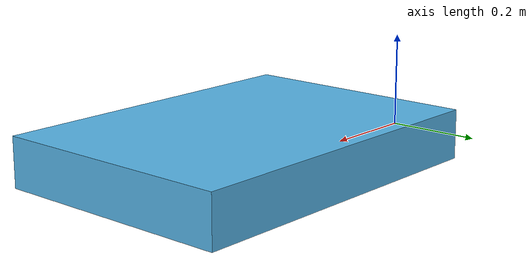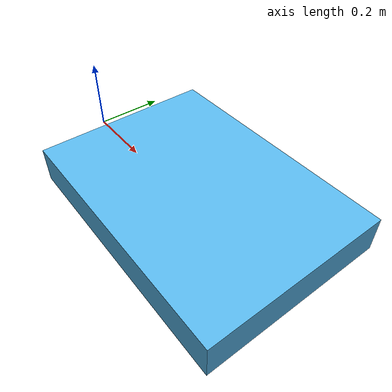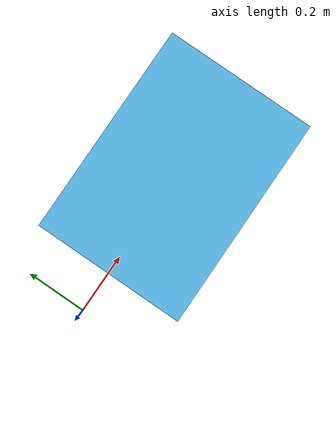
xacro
<robot
  name="box" xmlns:xacro="http://www.ros.org/wiki/xacro">

  <xacro:include filename="$(find bionicarm_description)/urdf/materials.xacro" />

  <gazebo reference="box">
    <visual name='visual'>
     <material>
       <script>
         <uri>file://media/materials/scripts/gazebo.material</uri>
         <name>Gazebo/Orange</name>
       </script>
     </material>
    </visual>
  </gazebo>

  <link name="world"/>

  <joint name="world_base" type="fixed">
    <origin
      xyz="0 0 0"
      rpy="0 0 0" />
    <parent
      link="world" />
    <child
      link="box" />
  </joint>

  <link name="box">
    <static> true </static>

    <visual>
      <origin xyz="0.5 0 0.05" rpy="0 0 0" />
      <geometry>
         <box size="0.7 0.5 0.1"/>
      </geometry>
    </visual>

    <collision>
      <origin xyz="0.5 0 0.05" rpy="0 0 0" />
      <geometry>
         <box size="0.7 0.5 0.1"/>
      </geometry>
    </collision>

    <inertial>
      <mass value="20" />
      <origin xyz="0 0 0" rpy="0 0 0"/>
      <inertia ixx="0.1" ixy="0" ixz="0" iyy="0.1" iyz="0" izz="0.1" />
    </inertial>
  </link>

</robot>
